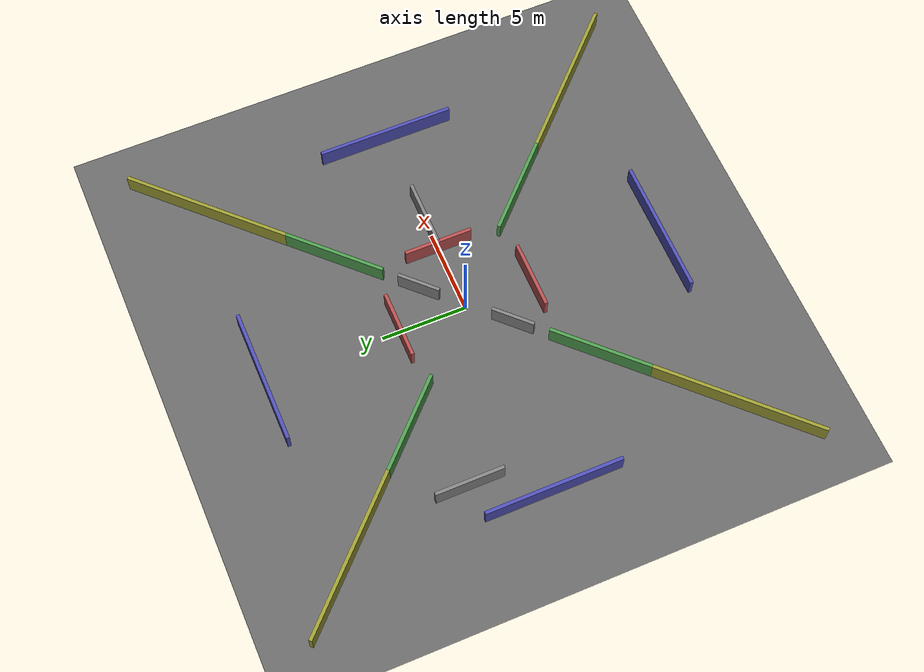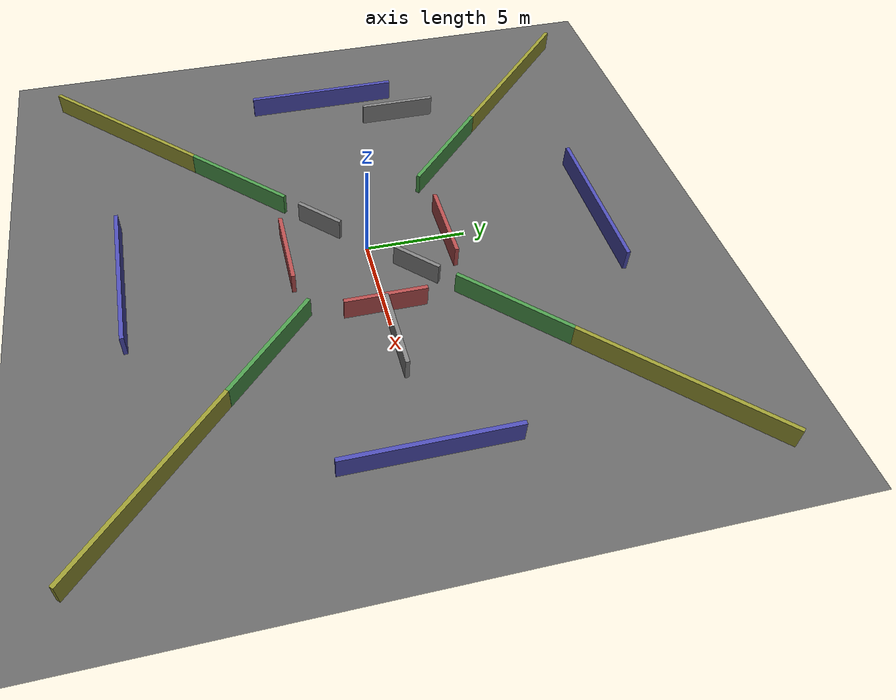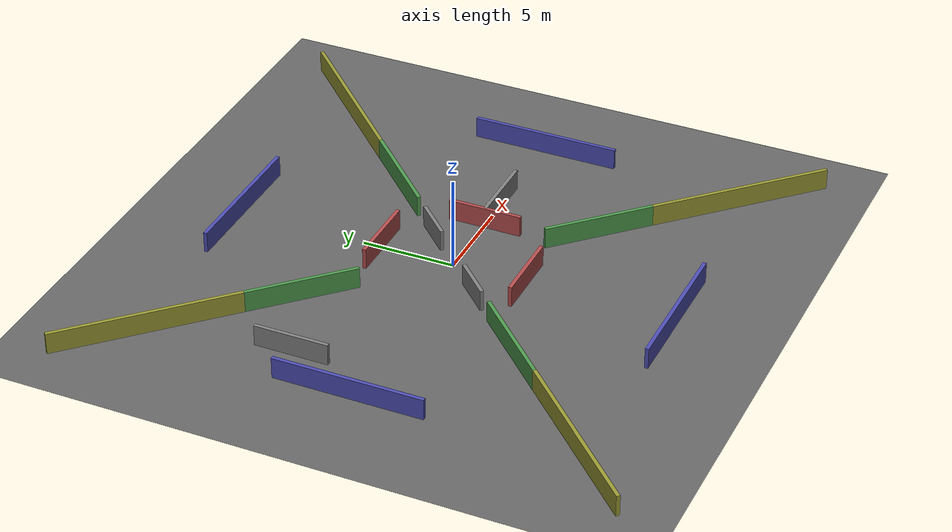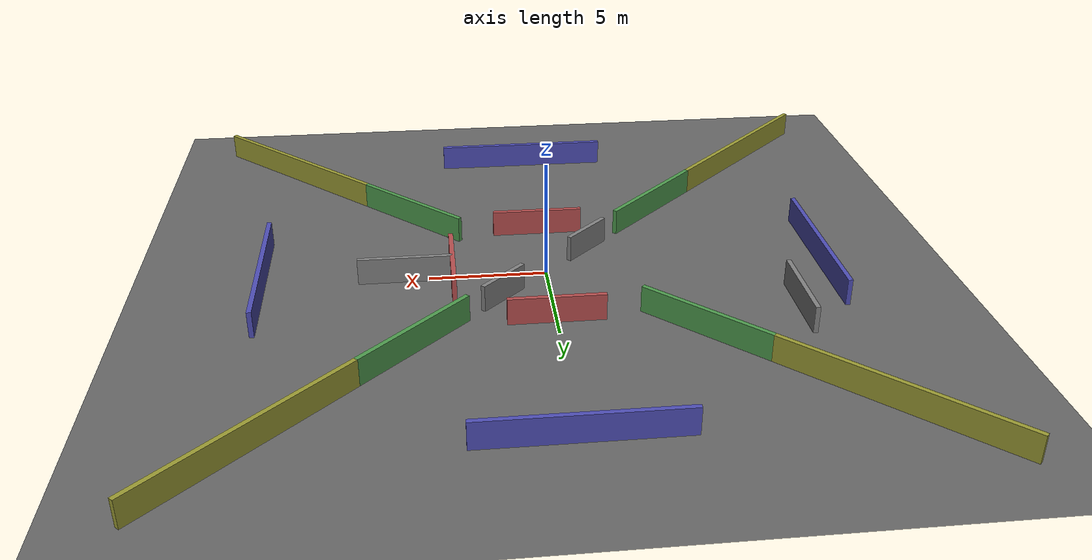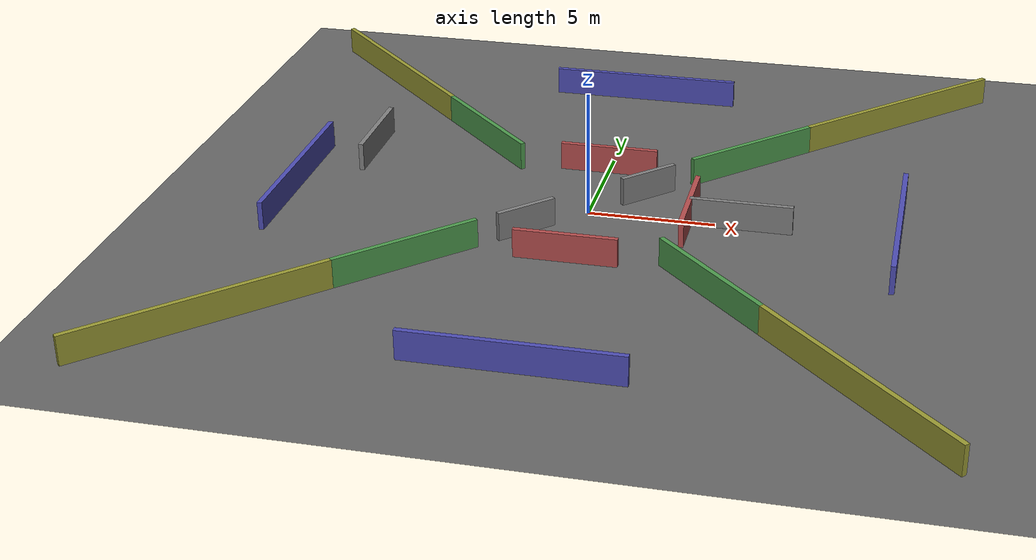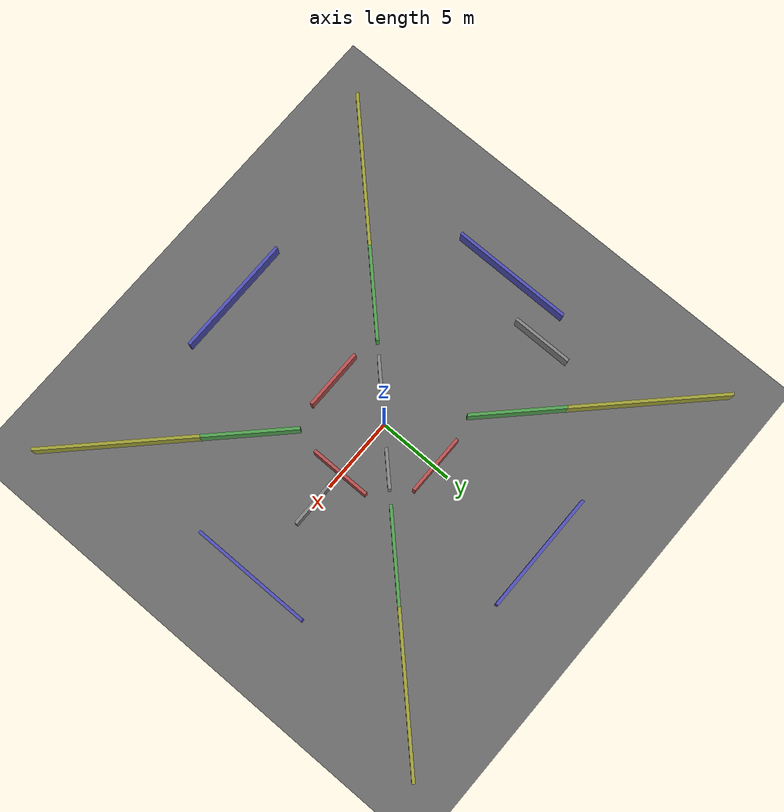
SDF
<?xml version="1.0" ?>
<sdf version="1.8">
  <world name="maze_zone">

    <physics name="1ms" type="ignored">
      <max_step_size>0.001</max_step_size>
      <real_time_factor>1.0</real_time_factor>
    </physics>

    <plugin filename="gz-sim-physics-system" name="gz::sim::systems::Physics"/>
    <plugin filename="gz-sim-user-commands-system" name="gz::sim::systems::UserCommands"/>
    <plugin filename="gz-sim-scene-broadcaster-system" name="gz::sim::systems::SceneBroadcaster"/>
    <plugin filename="gz-sim-sensors-system" name="gz::sim::systems::Sensors">
      <render_engine>ogre2</render_engine>
    </plugin>

    <light type="directional" name="sun">
      <cast_shadows>true</cast_shadows>
      <pose>0 0 15 0 0 0</pose>
      <diffuse>0.8 0.8 0.8 1</diffuse>
      <direction>-0.5 0.1 -0.9</direction>
    </light>

    <model name="ground_plane">
      <static>true</static>
      <link name="link">
        <collision name="collision">
          <geometry><plane><normal>0 0 1</normal><size>150 150</size></plane></geometry>
        </collision>
        <visual name="visual">
          <geometry><plane><normal>0 0 1</normal><size>150 150</size></plane></geometry>
          <material>
            <ambient>0.2 0.2 0.2 1</ambient>
            <diffuse>0.4 0.4 0.4 1</diffuse>
          </material>
        </visual>
      </link>
    </model>

    <model name="inner_wall_1"><static>true</static><pose>0 4 0.5 0 0 0</pose>
      <link name="l"><collision name="c"><geometry><box><size>4 0.2 1.2</size></box></geometry></collision>
      <visual name="v"><geometry><box><size>4 0.2 1.2</size></box></geometry><material><diffuse>0.7 0.3 0.3 1</diffuse></material></visual></link>
    </model>
    <model name="inner_wall_2"><static>true</static><pose>0 -4 0.5 0 0 0</pose>
      <link name="l"><collision name="c"><geometry><box><size>4 0.2 1.2</size></box></geometry></collision>
      <visual name="v"><geometry><box><size>4 0.2 1.2</size></box></geometry><material><diffuse>0.7 0.3 0.3 1</diffuse></material></visual></link>
    </model>
    <model name="inner_wall_3"><static>true</static><pose>4 0 0.5 0 0 1.5708</pose>
      <link name="l"><collision name="c"><geometry><box><size>4 0.2 1.2</size></box></geometry></collision>
      <visual name="v"><geometry><box><size>4 0.2 1.2</size></box></geometry><material><diffuse>0.7 0.3 0.3 1</diffuse></material></visual></link>
    </model>

    <model name="mid_wall_r8_1"><static>true</static><pose>5.65 5.65 0.5 0 0 0.785</pose>
      <link name="l"><collision name="c"><geometry><box><size>6 0.2 1.2</size></box></geometry></collision>
      <visual name="v"><geometry><box><size>6 0.2 1.2</size></box></geometry><material><diffuse>0.3 0.6 0.3 1</diffuse></material></visual></link>
    </model>
    <model name="mid_wall_r8_2"><static>true</static><pose>-5.65 5.65 0.5 0 0 -0.785</pose>
      <link name="l"><collision name="c"><geometry><box><size>6 0.2 1.2</size></box></geometry></collision>
      <visual name="v"><geometry><box><size>6 0.2 1.2</size></box></geometry><material><diffuse>0.3 0.6 0.3 1</diffuse></material></visual></link>
    </model>
    <model name="mid_wall_r8_3"><static>true</static><pose>5.65 -5.65 0.5 0 0 -0.785</pose>
      <link name="l"><collision name="c"><geometry><box><size>6 0.2 1.2</size></box></geometry></collision>
      <visual name="v"><geometry><box><size>6 0.2 1.2</size></box></geometry><material><diffuse>0.3 0.6 0.3 1</diffuse></material></visual></link>
    </model>
    <model name="mid_wall_r8_4"><static>true</static><pose>-5.65 -5.65 0.5 0 0 0.785</pose>
      <link name="l"><collision name="c"><geometry><box><size>6 0.2 1.2</size></box></geometry></collision>
      <visual name="v"><geometry><box><size>6 0.2 1.2</size></box></geometry><material><diffuse>0.3 0.6 0.3 1</diffuse></material></visual></link>
    </model>

    <model name="mid_wall_r12_1"><static>true</static><pose>0 12 0.5 0 0 0</pose>
      <link name="l"><collision name="c"><geometry><box><size>8 0.2 1.2</size></box></geometry></collision>
      <visual name="v"><geometry><box><size>8 0.2 1.2</size></box></geometry><material><diffuse>0.3 0.3 0.7 1</diffuse></material></visual></link>
    </model>
    <model name="mid_wall_r12_2"><static>true</static><pose>0 -12 0.5 0 0 0</pose>
      <link name="l"><collision name="c"><geometry><box><size>8 0.2 1.2</size></box></geometry></collision>
      <visual name="v"><geometry><box><size>8 0.2 1.2</size></box></geometry><material><diffuse>0.3 0.3 0.7 1</diffuse></material></visual></link>
    </model>
    <model name="mid_wall_r12_3"><static>true</static><pose>12 0 0.5 0 0 1.5708</pose>
      <link name="l"><collision name="c"><geometry><box><size>8 0.2 1.2</size></box></geometry></collision>
      <visual name="v"><geometry><box><size>8 0.2 1.2</size></box></geometry><material><diffuse>0.3 0.3 0.7 1</diffuse></material></visual></link>
    </model>
    <model name="mid_wall_r12_4"><static>true</static><pose>-12 0 0.5 0 0 1.5708</pose>
      <link name="l"><collision name="c"><geometry><box><size>8 0.2 1.2</size></box></geometry></collision>
      <visual name="v"><geometry><box><size>8 0.2 1.2</size></box></geometry><material><diffuse>0.3 0.3 0.7 1</diffuse></material></visual></link>
    </model>

    <model name="out_1"><static>true</static><pose>11.3 11.3 0.5 0 0 0.785</pose>
      <link name="l"><collision name="c"><geometry><box><size>10 0.2 1.2</size></box></geometry></collision>
      <visual name="v"><geometry><box><size>10 0.2 1.2</size></box></geometry><material><diffuse>0.6 0.6 0.2 1</diffuse></material></visual></link>
    </model>
    <model name="out_2"><static>true</static><pose>-11.3 11.3 0.5 0 0 -0.785</pose>
      <link name="l"><collision name="c"><geometry><box><size>10 0.2 1.2</size></box></geometry></collision>
      <visual name="v"><geometry><box><size>10 0.2 1.2</size></box></geometry><material><diffuse>0.6 0.6 0.2 1</diffuse></material></visual></link>
    </model>
    <model name="out_3"><static>true</static><pose>11.3 -11.3 0.5 0 0 -0.785</pose>
      <link name="l"><collision name="c"><geometry><box><size>10 0.2 1.2</size></box></geometry></collision>
      <visual name="v"><geometry><box><size>10 0.2 1.2</size></box></geometry><material><diffuse>0.6 0.6 0.2 1</diffuse></material></visual></link>
    </model>
    <model name="out_4"><static>true</static><pose>-11.3 -11.3 0.5 0 0 0.785</pose>
      <link name="l"><collision name="c"><geometry><box><size>10 0.2 1.2</size></box></geometry></collision>
      <visual name="v"><geometry><box><size>10 0.2 1.2</size></box></geometry><material><diffuse>0.6 0.6 0.2 1</diffuse></material></visual></link>
    </model>

    <model name="spoke_1"><static>true</static><pose>2 2 0.5 0 0 0.785</pose>
      <link name="l"><collision name="c"><geometry><box><size>2.5 0.2 1.2</size></box></geometry></collision>
      <visual name="v"><geometry><box><size>2.5 0.2 1.2</size></box></geometry><material><diffuse>0.5 0.5 0.5 1</diffuse></material></visual></link>
    </model>
    <model name="spoke_2"><static>true</static><pose>-2 -2 0.5 0 0 0.785</pose>
      <link name="l"><collision name="c"><geometry><box><size>2.5 0.2 1.2</size></box></geometry></collision>
      <visual name="v"><geometry><box><size>2.5 0.2 1.2</size></box></geometry><material><diffuse>0.5 0.5 0.5 1</diffuse></material></visual></link>
    </model>
    <model name="spoke_3"><static>true</static><pose>6 0 0.5 0 0 0</pose>
      <link name="l"><collision name="c"><geometry><box><size>4 0.2 1.2</size></box></geometry></collision>
      <visual name="v"><geometry><box><size>4 0.2 1.2</size></box></geometry><material><diffuse>0.5 0.5 0.5 1</diffuse></material></visual></link>
    </model>
    <model name="spoke_4"><static>true</static><pose>-10 4 0.5 0 0 1.5708</pose>
      <link name="l"><collision name="c"><geometry><box><size>4 0.2 1.2</size></box></geometry></collision>
      <visual name="v"><geometry><box><size>4 0.2 1.2</size></box></geometry><material><diffuse>0.5 0.5 0.5 1</diffuse></material></visual></link>
    </model>

  </world>
</sdf>
